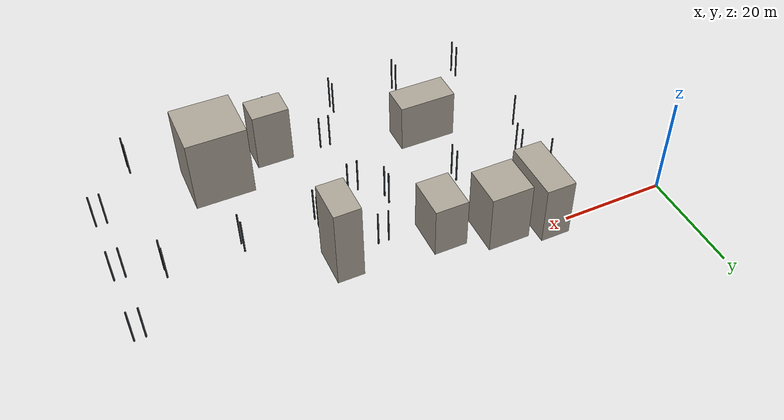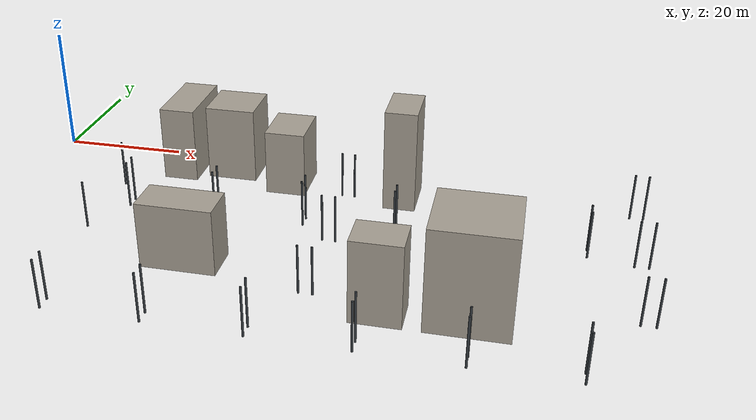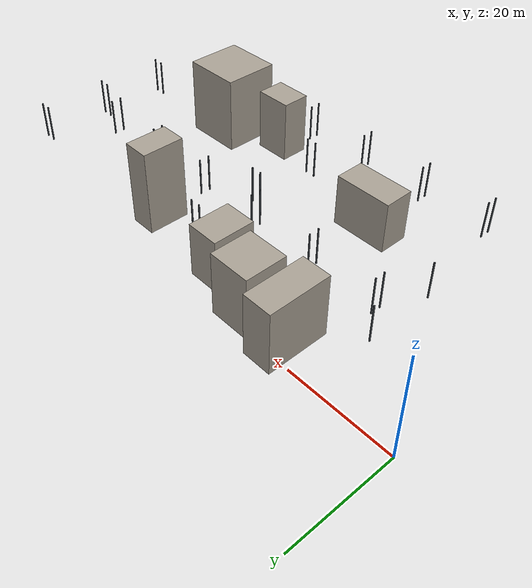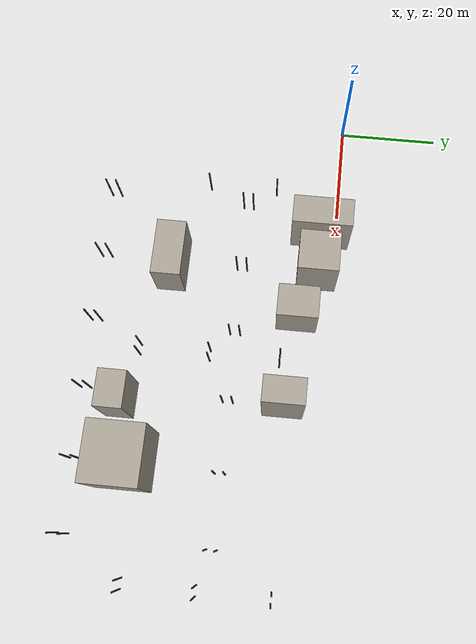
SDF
<sdf version="1.5">
 <world name="robocup_training_city_full_s7">
  <model name="building_0667">
   <static>true</static>
   <pose>33.540204 -32.883003 0 0 0 0</pose>
   <link name="link">
    <pose>0 0 5.029122 0 0 0</pose>
    <collision name="collision">
     <geometry><box><size>11.153431 5.819497 10.058244</size></box></geometry>
     <surface><friction><ode><mu>1</mu><mu2>1</mu2></ode></friction></surface>
    </collision>
    <visual name="visual">
     <geometry><box><size>11.153431 5.819497 10.058244</size></box></geometry>
     <material>
      <ambient>0.297 0.2835 0.261 1</ambient>
      <diffuse>0.66 0.63 0.58 1</diffuse>
      <specular>0.04 0.04 0.04 1</specular>
      <emissive>0 0 0 1</emissive>
     </material>
    </visual>
    <inertial>
     <mass>1</mass>
     <inertia>
      <ixx>11.252901</ixx>
      <ixy>0</ixy>
      <ixz>0</ixz>
      <iyy>18.797275</iyy>
      <iyz>0</iyz>
      <izz>13.188797</izz>
     </inertia>
    </inertial>
   </link>
  </model>
  <model name="building_0788">
   <static>true</static>
   <pose>74.495542 -36.841006 0 0 0 0</pose>
   <link name="link">
    <pose>0 0 7.563883 0 0 0</pose>
    <collision name="collision">
     <geometry><box><size>11.390095 10.860317 15.127766</size></box></geometry>
     <surface><friction><ode><mu>1</mu><mu2>1</mu2></ode></friction></surface>
    </collision>
    <visual name="visual">
     <geometry><box><size>11.390095 10.860317 15.127766</size></box></geometry>
     <material>
      <ambient>0.297 0.2835 0.261 1</ambient>
      <diffuse>0.66 0.63 0.58 1</diffuse>
      <specular>0.04 0.04 0.04 1</specular>
      <emissive>0 0 0 1</emissive>
     </material>
    </visual>
    <inertial>
     <mass>1</mass>
     <inertia>
      <ixx>28.899649</ixx>
      <ixy>0</ixy>
      <ixz>0</ixz>
      <iyy>29.881964</iyy>
      <iyz>0</iyz>
      <izz>20.640062</izz>
     </inertia>
    </inertial>
   </link>
  </model>
  <model name="building_0804">
   <static>true</static>
   <pose>62.766601 -39.588882 0 0 0 0</pose>
   <link name="link">
    <pose>0 0 6.126754 0 0 0</pose>
    <collision name="collision">
     <geometry><box><size>7.127302 5.447589 12.253508</size></box></geometry>
     <surface><friction><ode><mu>1</mu><mu2>1</mu2></ode></friction></surface>
    </collision>
    <visual name="visual">
     <geometry><box><size>7.127302 5.447589 12.253508</size></box></geometry>
     <material>
      <ambient>0.297 0.2835 0.261 1</ambient>
      <diffuse>0.66 0.63 0.58 1</diffuse>
      <specular>0.04 0.04 0.04 1</specular>
      <emissive>0 0 0 1</emissive>
     </material>
    </visual>
    <inertial>
     <mass>1</mass>
     <inertia>
      <ixx>14.98539</ixx>
      <ixy>0</ixy>
      <ixz>0</ixz>
      <iyy>16.745574</iyy>
      <iyz>0</iyz>
      <izz>6.706222</izz>
     </inertia>
    </inertial>
   </link>
  </model>
  <model name="building_1310">
   <static>true</static>
   <pose>32.338999 -3.36674 0 0 0 0</pose>
   <link name="link">
    <pose>0 0 6.127701 0 0 0</pose>
    <collision name="collision">
     <geometry><box><size>7.981018 7.94929 12.255402</size></box></geometry>
     <surface><friction><ode><mu>1</mu><mu2>1</mu2></ode></friction></surface>
    </collision>
    <visual name="visual">
     <geometry><box><size>7.981018 7.94929 12.255402</size></box></geometry>
     <material>
      <ambient>0.297 0.2835 0.261 1</ambient>
      <diffuse>0.66 0.63 0.58 1</diffuse>
      <specular>0.04 0.04 0.04 1</specular>
      <emissive>0 0 0 1</emissive>
     </material>
    </visual>
    <inertial>
     <mass>1</mass>
     <inertia>
      <ixx>17.782174</ixx>
      <ixy>0</ixy>
      <ixz>0</ixz>
      <iyy>17.824294</iyy>
      <iyz>0</iyz>
      <izz>10.573988</izz>
     </inertia>
    </inertial>
   </link>
  </model>
  <model name="building_1344">
   <static>true</static>
   <pose>24.014528 -3.276209 0 0 0 0</pose>
   <link name="link">
    <pose>0 0 6.074657 0 0 0</pose>
    <collision name="collision">
     <geometry><box><size>5.6072 11.893481 12.149315</size></box></geometry>
     <surface><friction><ode><mu>1</mu><mu2>1</mu2></ode></friction></surface>
    </collision>
    <visual name="visual">
     <geometry><box><size>5.6072 11.893481 12.149315</size></box></geometry>
     <material>
      <ambient>0.297 0.2835 0.261 1</ambient>
      <diffuse>0.66 0.63 0.58 1</diffuse>
      <specular>0.04 0.04 0.04 1</specular>
      <emissive>0 0 0 1</emissive>
     </material>
    </visual>
    <inertial>
     <mass>1</mass>
     <inertia>
      <ixx>24.088395</ixx>
      <ixy>0</ixy>
      <ixz>0</ixz>
      <iyy>14.920546</iyy>
      <iyz>0</iyz>
      <izz>14.407965</izz>
     </inertia>
    </inertial>
   </link>
  </model>
  <model name="building_1345">
   <static>true</static>
   <pose>42.341442 -6.593479 0 0 0 0</pose>
   <link name="link">
    <pose>0 0 5.240731 0 0 0</pose>
    <collision name="collision">
     <geometry><box><size>6.306943 8.052039 10.481462</size></box></geometry>
     <surface><friction><ode><mu>1</mu><mu2>1</mu2></ode></friction></surface>
    </collision>
    <visual name="visual">
     <geometry><box><size>6.306943 8.052039 10.481462</size></box></geometry>
     <material>
      <ambient>0.297 0.2835 0.261 1</ambient>
      <diffuse>0.66 0.63 0.58 1</diffuse>
      <specular>0.04 0.04 0.04 1</specular>
      <emissive>0 0 0 1</emissive>
     </material>
    </visual>
    <inertial>
     <mass>1</mass>
     <inertia>
      <ixx>14.558031</ixx>
      <ixy>0</ixy>
      <ixz>0</ixz>
      <iyy>12.469881</iyy>
      <iyz>0</iyz>
      <izz>8.717739</izz>
     </inertia>
    </inertial>
   </link>
  </model>
  <model name="building_1717">
   <static>true</static>
   <pose>60.892966 -7.826447 0 0 0 0</pose>
   <link name="link">
    <pose>0 0 8.139301 0 0 0</pose>
    <collision name="collision">
     <geometry><box><size>5.001045 7.930526 16.278602</size></box></geometry>
     <surface><friction><ode><mu>1</mu><mu2>1</mu2></ode></friction></surface>
    </collision>
    <visual name="visual">
     <geometry><box><size>5.001045 7.930526 16.278602</size></box></geometry>
     <material>
      <ambient>0.297 0.2835 0.261 1</ambient>
      <diffuse>0.66 0.63 0.58 1</diffuse>
      <specular>0.04 0.04 0.04 1</specular>
      <emissive>0 0 0 1</emissive>
     </material>
    </visual>
    <inertial>
     <mass>1</mass>
     <inertia>
      <ixx>27.323844</ixx>
      <ixy>0</ixy>
      <ixz>0</ixz>
      <iyy>24.166945</iyy>
      <iyz>0</iyz>
      <izz>7.325308</izz>
     </inertia>
    </inertial>
   </link>
  </model>
  <model name="lamp_post_2544">
   <static>true</static>
   <pose>15.8 -27.062914 0 0 0 0</pose>
   <link name="link">
    <pose>0 0 3.75 0 0 0</pose>
    <collision name="collision">
     <geometry><cylinder><radius>0.15</radius><length>7.5</length></cylinder></geometry>
     <surface><friction><ode><mu>1</mu><mu2>1</mu2></ode></friction></surface>
    </collision>
    <visual name="visual">
     <geometry><cylinder><radius>0.15</radius><length>7.5</length></cylinder></geometry>
     <material>
      <ambient>0.09 0.099 0.108 1</ambient>
      <diffuse>0.2 0.22 0.24 1</diffuse>
      <specular>0.04 0.04 0.04 1</specular>
      <emissive>0 0 0 1</emissive>
     </material>
    </visual>
    <inertial>
     <mass>1</mass>
     <inertia>
      <ixx>4.693125</ixx>
      <ixy>0</ixy>
      <ixz>0</ixz>
      <iyy>4.693125</iyy>
      <iyz>0</iyz>
      <izz>0.01125</izz>
     </inertia>
    </inertial>
   </link>
  </model>
  <model name="lamp_post_2546">
   <static>true</static>
   <pose>15.8 -13.062914 0 0 0 0</pose>
   <link name="link">
    <pose>0 0 3.75 0 0 0</pose>
    <collision name="collision">
     <geometry><cylinder><radius>0.15</radius><length>7.5</length></cylinder></geometry>
     <surface><friction><ode><mu>1</mu><mu2>1</mu2></ode></friction></surface>
    </collision>
    <visual name="visual">
     <geometry><cylinder><radius>0.15</radius><length>7.5</length></cylinder></geometry>
     <material>
      <ambient>0.09 0.099 0.108 1</ambient>
      <diffuse>0.2 0.22 0.24 1</diffuse>
      <specular>0.04 0.04 0.04 1</specular>
      <emissive>0 0 0 1</emissive>
     </material>
    </visual>
    <inertial>
     <mass>1</mass>
     <inertia>
      <ixx>4.693125</ixx>
      <ixy>0</ixy>
      <ixz>0</ixz>
      <iyy>4.693125</iyy>
      <iyz>0</iyz>
      <izz>0.01125</izz>
     </inertia>
    </inertial>
   </link>
  </model>
  <model name="lamp_post_2555">
   <static>true</static>
   <pose>51.4 -37.222369 0 0 0 0</pose>
   <link name="link">
    <pose>0 0 3.75 0 0 0</pose>
    <collision name="collision">
     <geometry><cylinder><radius>0.15</radius><length>7.5</length></cylinder></geometry>
     <surface><friction><ode><mu>1</mu><mu2>1</mu2></ode></friction></surface>
    </collision>
    <visual name="visual">
     <geometry><cylinder><radius>0.15</radius><length>7.5</length></cylinder></geometry>
     <material>
      <ambient>0.09 0.099 0.108 1</ambient>
      <diffuse>0.2 0.22 0.24 1</diffuse>
      <specular>0.04 0.04 0.04 1</specular>
      <emissive>0 0 0 1</emissive>
     </material>
    </visual>
    <inertial>
     <mass>1</mass>
     <inertia>
      <ixx>4.693125</ixx>
      <ixy>0</ixy>
      <ixz>0</ixz>
      <iyy>4.693125</iyy>
      <iyz>0</iyz>
      <izz>0.01125</izz>
     </inertia>
    </inertial>
   </link>
  </model>
  <model name="lamp_post_2556">
   <static>true</static>
   <pose>53.4 -37.222369 0 0 0 0</pose>
   <link name="link">
    <pose>0 0 3.75 0 0 0</pose>
    <collision name="collision">
     <geometry><cylinder><radius>0.15</radius><length>7.5</length></cylinder></geometry>
     <surface><friction><ode><mu>1</mu><mu2>1</mu2></ode></friction></surface>
    </collision>
    <visual name="visual">
     <geometry><cylinder><radius>0.15</radius><length>7.5</length></cylinder></geometry>
     <material>
      <ambient>0.09 0.099 0.108 1</ambient>
      <diffuse>0.2 0.22 0.24 1</diffuse>
      <specular>0.04 0.04 0.04 1</specular>
      <emissive>0 0 0 1</emissive>
     </material>
    </visual>
    <inertial>
     <mass>1</mass>
     <inertia>
      <ixx>4.693125</ixx>
      <ixy>0</ixy>
      <ixz>0</ixz>
      <iyy>4.693125</iyy>
      <iyz>0</iyz>
      <izz>0.01125</izz>
     </inertia>
    </inertial>
   </link>
  </model>
  <model name="lamp_post_2557">
   <static>true</static>
   <pose>51.4 -23.222369 0 0 0 0</pose>
   <link name="link">
    <pose>0 0 3.75 0 0 0</pose>
    <collision name="collision">
     <geometry><cylinder><radius>0.15</radius><length>7.5</length></cylinder></geometry>
     <surface><friction><ode><mu>1</mu><mu2>1</mu2></ode></friction></surface>
    </collision>
    <visual name="visual">
     <geometry><cylinder><radius>0.15</radius><length>7.5</length></cylinder></geometry>
     <material>
      <ambient>0.09 0.099 0.108 1</ambient>
      <diffuse>0.2 0.22 0.24 1</diffuse>
      <specular>0.04 0.04 0.04 1</specular>
      <emissive>0 0 0 1</emissive>
     </material>
    </visual>
    <inertial>
     <mass>1</mass>
     <inertia>
      <ixx>4.693125</ixx>
      <ixy>0</ixy>
      <ixz>0</ixz>
      <iyy>4.693125</iyy>
      <iyz>0</iyz>
      <izz>0.01125</izz>
     </inertia>
    </inertial>
   </link>
  </model>
  <model name="lamp_post_2558">
   <static>true</static>
   <pose>53.4 -23.222369 0 0 0 0</pose>
   <link name="link">
    <pose>0 0 3.75 0 0 0</pose>
    <collision name="collision">
     <geometry><cylinder><radius>0.15</radius><length>7.5</length></cylinder></geometry>
     <surface><friction><ode><mu>1</mu><mu2>1</mu2></ode></friction></surface>
    </collision>
    <visual name="visual">
     <geometry><cylinder><radius>0.15</radius><length>7.5</length></cylinder></geometry>
     <material>
      <ambient>0.09 0.099 0.108 1</ambient>
      <diffuse>0.2 0.22 0.24 1</diffuse>
      <specular>0.04 0.04 0.04 1</specular>
      <emissive>0 0 0 1</emissive>
     </material>
    </visual>
    <inertial>
     <mass>1</mass>
     <inertia>
      <ixx>4.693125</ixx>
      <ixy>0</ixy>
      <ixz>0</ixz>
      <iyy>4.693125</iyy>
      <iyz>0</iyz>
      <izz>0.01125</izz>
     </inertia>
    </inertial>
   </link>
  </model>
  <model name="lamp_post_2559">
   <static>true</static>
   <pose>51.4 -9.222369 0 0 0 0</pose>
   <link name="link">
    <pose>0 0 3.75 0 0 0</pose>
    <collision name="collision">
     <geometry><cylinder><radius>0.15</radius><length>7.5</length></cylinder></geometry>
     <surface><friction><ode><mu>1</mu><mu2>1</mu2></ode></friction></surface>
    </collision>
    <visual name="visual">
     <geometry><cylinder><radius>0.15</radius><length>7.5</length></cylinder></geometry>
     <material>
      <ambient>0.09 0.099 0.108 1</ambient>
      <diffuse>0.2 0.22 0.24 1</diffuse>
      <specular>0.04 0.04 0.04 1</specular>
      <emissive>0 0 0 1</emissive>
     </material>
    </visual>
    <inertial>
     <mass>1</mass>
     <inertia>
      <ixx>4.693125</ixx>
      <ixy>0</ixy>
      <ixz>0</ixz>
      <iyy>4.693125</iyy>
      <iyz>0</iyz>
      <izz>0.01125</izz>
     </inertia>
    </inertial>
   </link>
  </model>
  <model name="lamp_post_2560">
   <static>true</static>
   <pose>53.4 -9.222369 0 0 0 0</pose>
   <link name="link">
    <pose>0 0 3.75 0 0 0</pose>
    <collision name="collision">
     <geometry><cylinder><radius>0.15</radius><length>7.5</length></cylinder></geometry>
     <surface><friction><ode><mu>1</mu><mu2>1</mu2></ode></friction></surface>
    </collision>
    <visual name="visual">
     <geometry><cylinder><radius>0.15</radius><length>7.5</length></cylinder></geometry>
     <material>
      <ambient>0.09 0.099 0.108 1</ambient>
      <diffuse>0.2 0.22 0.24 1</diffuse>
      <specular>0.04 0.04 0.04 1</specular>
      <emissive>0 0 0 1</emissive>
     </material>
    </visual>
    <inertial>
     <mass>1</mass>
     <inertia>
      <ixx>4.693125</ixx>
      <ixy>0</ixy>
      <ixz>0</ixz>
      <iyy>4.693125</iyy>
      <iyz>0</iyz>
      <izz>0.01125</izz>
     </inertia>
    </inertial>
   </link>
  </model>
  <model name="lamp_post_2567">
   <static>true</static>
   <pose>96 -34.838925 0 0 0 0</pose>
   <link name="link">
    <pose>0 0 3.75 0 0 0</pose>
    <collision name="collision">
     <geometry><cylinder><radius>0.15</radius><length>7.5</length></cylinder></geometry>
     <surface><friction><ode><mu>1</mu><mu2>1</mu2></ode></friction></surface>
    </collision>
    <visual name="visual">
     <geometry><cylinder><radius>0.15</radius><length>7.5</length></cylinder></geometry>
     <material>
      <ambient>0.09 0.099 0.108 1</ambient>
      <diffuse>0.2 0.22 0.24 1</diffuse>
      <specular>0.04 0.04 0.04 1</specular>
      <emissive>0 0 0 1</emissive>
     </material>
    </visual>
    <inertial>
     <mass>1</mass>
     <inertia>
      <ixx>4.693125</ixx>
      <ixy>0</ixy>
      <ixz>0</ixz>
      <iyy>4.693125</iyy>
      <iyz>0</iyz>
      <izz>0.01125</izz>
     </inertia>
    </inertial>
   </link>
  </model>
  <model name="lamp_post_2568">
   <static>true</static>
   <pose>98 -34.838925 0 0 0 0</pose>
   <link name="link">
    <pose>0 0 3.75 0 0 0</pose>
    <collision name="collision">
     <geometry><cylinder><radius>0.15</radius><length>7.5</length></cylinder></geometry>
     <surface><friction><ode><mu>1</mu><mu2>1</mu2></ode></friction></surface>
    </collision>
    <visual name="visual">
     <geometry><cylinder><radius>0.15</radius><length>7.5</length></cylinder></geometry>
     <material>
      <ambient>0.09 0.099 0.108 1</ambient>
      <diffuse>0.2 0.22 0.24 1</diffuse>
      <specular>0.04 0.04 0.04 1</specular>
      <emissive>0 0 0 1</emissive>
     </material>
    </visual>
    <inertial>
     <mass>1</mass>
     <inertia>
      <ixx>4.693125</ixx>
      <ixy>0</ixy>
      <ixz>0</ixz>
      <iyy>4.693125</iyy>
      <iyz>0</iyz>
      <izz>0.01125</izz>
     </inertia>
    </inertial>
   </link>
  </model>
  <model name="lamp_post_2569">
   <static>true</static>
   <pose>96 -20.838925 0 0 0 0</pose>
   <link name="link">
    <pose>0 0 3.75 0 0 0</pose>
    <collision name="collision">
     <geometry><cylinder><radius>0.15</radius><length>7.5</length></cylinder></geometry>
     <surface><friction><ode><mu>1</mu><mu2>1</mu2></ode></friction></surface>
    </collision>
    <visual name="visual">
     <geometry><cylinder><radius>0.15</radius><length>7.5</length></cylinder></geometry>
     <material>
      <ambient>0.09 0.099 0.108 1</ambient>
      <diffuse>0.2 0.22 0.24 1</diffuse>
      <specular>0.04 0.04 0.04 1</specular>
      <emissive>0 0 0 1</emissive>
     </material>
    </visual>
    <inertial>
     <mass>1</mass>
     <inertia>
      <ixx>4.693125</ixx>
      <ixy>0</ixy>
      <ixz>0</ixz>
      <iyy>4.693125</iyy>
      <iyz>0</iyz>
      <izz>0.01125</izz>
     </inertia>
    </inertial>
   </link>
  </model>
  <model name="lamp_post_2570">
   <static>true</static>
   <pose>98 -20.838925 0 0 0 0</pose>
   <link name="link">
    <pose>0 0 3.75 0 0 0</pose>
    <collision name="collision">
     <geometry><cylinder><radius>0.15</radius><length>7.5</length></cylinder></geometry>
     <surface><friction><ode><mu>1</mu><mu2>1</mu2></ode></friction></surface>
    </collision>
    <visual name="visual">
     <geometry><cylinder><radius>0.15</radius><length>7.5</length></cylinder></geometry>
     <material>
      <ambient>0.09 0.099 0.108 1</ambient>
      <diffuse>0.2 0.22 0.24 1</diffuse>
      <specular>0.04 0.04 0.04 1</specular>
      <emissive>0 0 0 1</emissive>
     </material>
    </visual>
    <inertial>
     <mass>1</mass>
     <inertia>
      <ixx>4.693125</ixx>
      <ixy>0</ixy>
      <ixz>0</ixz>
      <iyy>4.693125</iyy>
      <iyz>0</iyz>
      <izz>0.01125</izz>
     </inertia>
    </inertial>
   </link>
  </model>
  <model name="lamp_post_2571">
   <static>true</static>
   <pose>96 -6.838925 0 0 0 0</pose>
   <link name="link">
    <pose>0 0 3.75 0 0 0</pose>
    <collision name="collision">
     <geometry><cylinder><radius>0.15</radius><length>7.5</length></cylinder></geometry>
     <surface><friction><ode><mu>1</mu><mu2>1</mu2></ode></friction></surface>
    </collision>
    <visual name="visual">
     <geometry><cylinder><radius>0.15</radius><length>7.5</length></cylinder></geometry>
     <material>
      <ambient>0.09 0.099 0.108 1</ambient>
      <diffuse>0.2 0.22 0.24 1</diffuse>
      <specular>0.04 0.04 0.04 1</specular>
      <emissive>0 0 0 1</emissive>
     </material>
    </visual>
    <inertial>
     <mass>1</mass>
     <inertia>
      <ixx>4.693125</ixx>
      <ixy>0</ixy>
      <ixz>0</ixz>
      <iyy>4.693125</iyy>
      <iyz>0</iyz>
      <izz>0.01125</izz>
     </inertia>
    </inertial>
   </link>
  </model>
  <model name="lamp_post_2572">
   <static>true</static>
   <pose>98 -6.838925 0 0 0 0</pose>
   <link name="link">
    <pose>0 0 3.75 0 0 0</pose>
    <collision name="collision">
     <geometry><cylinder><radius>0.15</radius><length>7.5</length></cylinder></geometry>
     <surface><friction><ode><mu>1</mu><mu2>1</mu2></ode></friction></surface>
    </collision>
    <visual name="visual">
     <geometry><cylinder><radius>0.15</radius><length>7.5</length></cylinder></geometry>
     <material>
      <ambient>0.09 0.099 0.108 1</ambient>
      <diffuse>0.2 0.22 0.24 1</diffuse>
      <specular>0.04 0.04 0.04 1</specular>
      <emissive>0 0 0 1</emissive>
     </material>
    </visual>
    <inertial>
     <mass>1</mass>
     <inertia>
      <ixx>4.693125</ixx>
      <ixy>0</ixy>
      <ixz>0</ixz>
      <iyy>4.693125</iyy>
      <iyz>0</iyz>
      <izz>0.01125</izz>
     </inertia>
    </inertial>
   </link>
  </model>
  <model name="lamp_post_2595">
   <static>true</static>
   <pose>19.07256 -48 0 0 0 0</pose>
   <link name="link">
    <pose>0 0 3.75 0 0 0</pose>
    <collision name="collision">
     <geometry><cylinder><radius>0.15</radius><length>7.5</length></cylinder></geometry>
     <surface><friction><ode><mu>1</mu><mu2>1</mu2></ode></friction></surface>
    </collision>
    <visual name="visual">
     <geometry><cylinder><radius>0.15</radius><length>7.5</length></cylinder></geometry>
     <material>
      <ambient>0.09 0.099 0.108 1</ambient>
      <diffuse>0.2 0.22 0.24 1</diffuse>
      <specular>0.04 0.04 0.04 1</specular>
      <emissive>0 0 0 1</emissive>
     </material>
    </visual>
    <inertial>
     <mass>1</mass>
     <inertia>
      <ixx>4.693125</ixx>
      <ixy>0</ixy>
      <ixz>0</ixz>
      <iyy>4.693125</iyy>
      <iyz>0</iyz>
      <izz>0.01125</izz>
     </inertia>
    </inertial>
   </link>
  </model>
  <model name="lamp_post_2596">
   <static>true</static>
   <pose>19.07256 -46 0 0 0 0</pose>
   <link name="link">
    <pose>0 0 3.75 0 0 0</pose>
    <collision name="collision">
     <geometry><cylinder><radius>0.15</radius><length>7.5</length></cylinder></geometry>
     <surface><friction><ode><mu>1</mu><mu2>1</mu2></ode></friction></surface>
    </collision>
    <visual name="visual">
     <geometry><cylinder><radius>0.15</radius><length>7.5</length></cylinder></geometry>
     <material>
      <ambient>0.09 0.099 0.108 1</ambient>
      <diffuse>0.2 0.22 0.24 1</diffuse>
      <specular>0.04 0.04 0.04 1</specular>
      <emissive>0 0 0 1</emissive>
     </material>
    </visual>
    <inertial>
     <mass>1</mass>
     <inertia>
      <ixx>4.693125</ixx>
      <ixy>0</ixy>
      <ixz>0</ixz>
      <iyy>4.693125</iyy>
      <iyz>0</iyz>
      <izz>0.01125</izz>
     </inertia>
    </inertial>
   </link>
  </model>
  <model name="lamp_post_2597">
   <static>true</static>
   <pose>33.07256 -48 0 0 0 0</pose>
   <link name="link">
    <pose>0 0 3.75 0 0 0</pose>
    <collision name="collision">
     <geometry><cylinder><radius>0.15</radius><length>7.5</length></cylinder></geometry>
     <surface><friction><ode><mu>1</mu><mu2>1</mu2></ode></friction></surface>
    </collision>
    <visual name="visual">
     <geometry><cylinder><radius>0.15</radius><length>7.5</length></cylinder></geometry>
     <material>
      <ambient>0.09 0.099 0.108 1</ambient>
      <diffuse>0.2 0.22 0.24 1</diffuse>
      <specular>0.04 0.04 0.04 1</specular>
      <emissive>0 0 0 1</emissive>
     </material>
    </visual>
    <inertial>
     <mass>1</mass>
     <inertia>
      <ixx>4.693125</ixx>
      <ixy>0</ixy>
      <ixz>0</ixz>
      <iyy>4.693125</iyy>
      <iyz>0</iyz>
      <izz>0.01125</izz>
     </inertia>
    </inertial>
   </link>
  </model>
  <model name="lamp_post_2598">
   <static>true</static>
   <pose>33.07256 -46 0 0 0 0</pose>
   <link name="link">
    <pose>0 0 3.75 0 0 0</pose>
    <collision name="collision">
     <geometry><cylinder><radius>0.15</radius><length>7.5</length></cylinder></geometry>
     <surface><friction><ode><mu>1</mu><mu2>1</mu2></ode></friction></surface>
    </collision>
    <visual name="visual">
     <geometry><cylinder><radius>0.15</radius><length>7.5</length></cylinder></geometry>
     <material>
      <ambient>0.09 0.099 0.108 1</ambient>
      <diffuse>0.2 0.22 0.24 1</diffuse>
      <specular>0.04 0.04 0.04 1</specular>
      <emissive>0 0 0 1</emissive>
     </material>
    </visual>
    <inertial>
     <mass>1</mass>
     <inertia>
      <ixx>4.693125</ixx>
      <ixy>0</ixy>
      <ixz>0</ixz>
      <iyy>4.693125</iyy>
      <iyz>0</iyz>
      <izz>0.01125</izz>
     </inertia>
    </inertial>
   </link>
  </model>
  <model name="lamp_post_2599">
   <static>true</static>
   <pose>47.07256 -48 0 0 0 0</pose>
   <link name="link">
    <pose>0 0 3.75 0 0 0</pose>
    <collision name="collision">
     <geometry><cylinder><radius>0.15</radius><length>7.5</length></cylinder></geometry>
     <surface><friction><ode><mu>1</mu><mu2>1</mu2></ode></friction></surface>
    </collision>
    <visual name="visual">
     <geometry><cylinder><radius>0.15</radius><length>7.5</length></cylinder></geometry>
     <material>
      <ambient>0.09 0.099 0.108 1</ambient>
      <diffuse>0.2 0.22 0.24 1</diffuse>
      <specular>0.04 0.04 0.04 1</specular>
      <emissive>0 0 0 1</emissive>
     </material>
    </visual>
    <inertial>
     <mass>1</mass>
     <inertia>
      <ixx>4.693125</ixx>
      <ixy>0</ixy>
      <ixz>0</ixz>
      <iyy>4.693125</iyy>
      <iyz>0</iyz>
      <izz>0.01125</izz>
     </inertia>
    </inertial>
   </link>
  </model>
  <model name="lamp_post_2600">
   <static>true</static>
   <pose>47.07256 -46 0 0 0 0</pose>
   <link name="link">
    <pose>0 0 3.75 0 0 0</pose>
    <collision name="collision">
     <geometry><cylinder><radius>0.15</radius><length>7.5</length></cylinder></geometry>
     <surface><friction><ode><mu>1</mu><mu2>1</mu2></ode></friction></surface>
    </collision>
    <visual name="visual">
     <geometry><cylinder><radius>0.15</radius><length>7.5</length></cylinder></geometry>
     <material>
      <ambient>0.09 0.099 0.108 1</ambient>
      <diffuse>0.2 0.22 0.24 1</diffuse>
      <specular>0.04 0.04 0.04 1</specular>
      <emissive>0 0 0 1</emissive>
     </material>
    </visual>
    <inertial>
     <mass>1</mass>
     <inertia>
      <ixx>4.693125</ixx>
      <ixy>0</ixy>
      <ixz>0</ixz>
      <iyy>4.693125</iyy>
      <iyz>0</iyz>
      <izz>0.01125</izz>
     </inertia>
    </inertial>
   </link>
  </model>
  <model name="lamp_post_2601">
   <static>true</static>
   <pose>61.07256 -48 0 0 0 0</pose>
   <link name="link">
    <pose>0 0 3.75 0 0 0</pose>
    <collision name="collision">
     <geometry><cylinder><radius>0.15</radius><length>7.5</length></cylinder></geometry>
     <surface><friction><ode><mu>1</mu><mu2>1</mu2></ode></friction></surface>
    </collision>
    <visual name="visual">
     <geometry><cylinder><radius>0.15</radius><length>7.5</length></cylinder></geometry>
     <material>
      <ambient>0.09 0.099 0.108 1</ambient>
      <diffuse>0.2 0.22 0.24 1</diffuse>
      <specular>0.04 0.04 0.04 1</specular>
      <emissive>0 0 0 1</emissive>
     </material>
    </visual>
    <inertial>
     <mass>1</mass>
     <inertia>
      <ixx>4.693125</ixx>
      <ixy>0</ixy>
      <ixz>0</ixz>
      <iyy>4.693125</iyy>
      <iyz>0</iyz>
      <izz>0.01125</izz>
     </inertia>
    </inertial>
   </link>
  </model>
  <model name="lamp_post_2602">
   <static>true</static>
   <pose>61.07256 -46 0 0 0 0</pose>
   <link name="link">
    <pose>0 0 3.75 0 0 0</pose>
    <collision name="collision">
     <geometry><cylinder><radius>0.15</radius><length>7.5</length></cylinder></geometry>
     <surface><friction><ode><mu>1</mu><mu2>1</mu2></ode></friction></surface>
    </collision>
    <visual name="visual">
     <geometry><cylinder><radius>0.15</radius><length>7.5</length></cylinder></geometry>
     <material>
      <ambient>0.09 0.099 0.108 1</ambient>
      <diffuse>0.2 0.22 0.24 1</diffuse>
      <specular>0.04 0.04 0.04 1</specular>
      <emissive>0 0 0 1</emissive>
     </material>
    </visual>
    <inertial>
     <mass>1</mass>
     <inertia>
      <ixx>4.693125</ixx>
      <ixy>0</ixy>
      <ixz>0</ixz>
      <iyy>4.693125</iyy>
      <iyz>0</iyz>
      <izz>0.01125</izz>
     </inertia>
    </inertial>
   </link>
  </model>
  <model name="lamp_post_2603">
   <static>true</static>
   <pose>75.07256 -48 0 0 0 0</pose>
   <link name="link">
    <pose>0 0 3.75 0 0 0</pose>
    <collision name="collision">
     <geometry><cylinder><radius>0.15</radius><length>7.5</length></cylinder></geometry>
     <surface><friction><ode><mu>1</mu><mu2>1</mu2></ode></friction></surface>
    </collision>
    <visual name="visual">
     <geometry><cylinder><radius>0.15</radius><length>7.5</length></cylinder></geometry>
     <material>
      <ambient>0.09 0.099 0.108 1</ambient>
      <diffuse>0.2 0.22 0.24 1</diffuse>
      <specular>0.04 0.04 0.04 1</specular>
      <emissive>0 0 0 1</emissive>
     </material>
    </visual>
    <inertial>
     <mass>1</mass>
     <inertia>
      <ixx>4.693125</ixx>
      <ixy>0</ixy>
      <ixz>0</ixz>
      <iyy>4.693125</iyy>
      <iyz>0</iyz>
      <izz>0.01125</izz>
     </inertia>
    </inertial>
   </link>
  </model>
  <model name="lamp_post_2604">
   <static>true</static>
   <pose>75.07256 -46 0 0 0 0</pose>
   <link name="link">
    <pose>0 0 3.75 0 0 0</pose>
    <collision name="collision">
     <geometry><cylinder><radius>0.15</radius><length>7.5</length></cylinder></geometry>
     <surface><friction><ode><mu>1</mu><mu2>1</mu2></ode></friction></surface>
    </collision>
    <visual name="visual">
     <geometry><cylinder><radius>0.15</radius><length>7.5</length></cylinder></geometry>
     <material>
      <ambient>0.09 0.099 0.108 1</ambient>
      <diffuse>0.2 0.22 0.24 1</diffuse>
      <specular>0.04 0.04 0.04 1</specular>
      <emissive>0 0 0 1</emissive>
     </material>
    </visual>
    <inertial>
     <mass>1</mass>
     <inertia>
      <ixx>4.693125</ixx>
      <ixy>0</ixy>
      <ixz>0</ixz>
      <iyy>4.693125</iyy>
      <iyz>0</iyz>
      <izz>0.01125</izz>
     </inertia>
    </inertial>
   </link>
  </model>
  <model name="lamp_post_2605">
   <static>true</static>
   <pose>89.07256 -48 0 0 0 0</pose>
   <link name="link">
    <pose>0 0 3.75 0 0 0</pose>
    <collision name="collision">
     <geometry><cylinder><radius>0.15</radius><length>7.5</length></cylinder></geometry>
     <surface><friction><ode><mu>1</mu><mu2>1</mu2></ode></friction></surface>
    </collision>
    <visual name="visual">
     <geometry><cylinder><radius>0.15</radius><length>7.5</length></cylinder></geometry>
     <material>
      <ambient>0.09 0.099 0.108 1</ambient>
      <diffuse>0.2 0.22 0.24 1</diffuse>
      <specular>0.04 0.04 0.04 1</specular>
      <emissive>0 0 0 1</emissive>
     </material>
    </visual>
    <inertial>
     <mass>1</mass>
     <inertia>
      <ixx>4.693125</ixx>
      <ixy>0</ixy>
      <ixz>0</ixz>
      <iyy>4.693125</iyy>
      <iyz>0</iyz>
      <izz>0.01125</izz>
     </inertia>
    </inertial>
   </link>
  </model>
  <model name="lamp_post_2606">
   <static>true</static>
   <pose>89.07256 -46 0 0 0 0</pose>
   <link name="link">
    <pose>0 0 3.75 0 0 0</pose>
    <collision name="collision">
     <geometry><cylinder><radius>0.15</radius><length>7.5</length></cylinder></geometry>
     <surface><friction><ode><mu>1</mu><mu2>1</mu2></ode></friction></surface>
    </collision>
    <visual name="visual">
     <geometry><cylinder><radius>0.15</radius><length>7.5</length></cylinder></geometry>
     <material>
      <ambient>0.09 0.099 0.108 1</ambient>
      <diffuse>0.2 0.22 0.24 1</diffuse>
      <specular>0.04 0.04 0.04 1</specular>
      <emissive>0 0 0 1</emissive>
     </material>
    </visual>
    <inertial>
     <mass>1</mass>
     <inertia>
      <ixx>4.693125</ixx>
      <ixy>0</ixy>
      <ixz>0</ixz>
      <iyy>4.693125</iyy>
      <iyz>0</iyz>
      <izz>0.01125</izz>
     </inertia>
    </inertial>
   </link>
  </model>
  <model name="lamp_post_2623">
   <static>true</static>
   <pose>19.508768 -19.666667 0 0 0 0</pose>
   <link name="link">
    <pose>0 0 3.75 0 0 0</pose>
    <collision name="collision">
     <geometry><cylinder><radius>0.15</radius><length>7.5</length></cylinder></geometry>
     <surface><friction><ode><mu>1</mu><mu2>1</mu2></ode></friction></surface>
    </collision>
    <visual name="visual">
     <geometry><cylinder><radius>0.15</radius><length>7.5</length></cylinder></geometry>
     <material>
      <ambient>0.09 0.099 0.108 1</ambient>
      <diffuse>0.2 0.22 0.24 1</diffuse>
      <specular>0.04 0.04 0.04 1</specular>
      <emissive>0 0 0 1</emissive>
     </material>
    </visual>
    <inertial>
     <mass>1</mass>
     <inertia>
      <ixx>4.693125</ixx>
      <ixy>0</ixy>
      <ixz>0</ixz>
      <iyy>4.693125</iyy>
      <iyz>0</iyz>
      <izz>0.01125</izz>
     </inertia>
    </inertial>
   </link>
  </model>
  <model name="lamp_post_2624">
   <static>true</static>
   <pose>19.508768 -17.666667 0 0 0 0</pose>
   <link name="link">
    <pose>0 0 3.75 0 0 0</pose>
    <collision name="collision">
     <geometry><cylinder><radius>0.15</radius><length>7.5</length></cylinder></geometry>
     <surface><friction><ode><mu>1</mu><mu2>1</mu2></ode></friction></surface>
    </collision>
    <visual name="visual">
     <geometry><cylinder><radius>0.15</radius><length>7.5</length></cylinder></geometry>
     <material>
      <ambient>0.09 0.099 0.108 1</ambient>
      <diffuse>0.2 0.22 0.24 1</diffuse>
      <specular>0.04 0.04 0.04 1</specular>
      <emissive>0 0 0 1</emissive>
     </material>
    </visual>
    <inertial>
     <mass>1</mass>
     <inertia>
      <ixx>4.693125</ixx>
      <ixy>0</ixy>
      <ixz>0</ixz>
      <iyy>4.693125</iyy>
      <iyz>0</iyz>
      <izz>0.01125</izz>
     </inertia>
    </inertial>
   </link>
  </model>
  <model name="lamp_post_2625">
   <static>true</static>
   <pose>33.508768 -19.666667 0 0 0 0</pose>
   <link name="link">
    <pose>0 0 3.75 0 0 0</pose>
    <collision name="collision">
     <geometry><cylinder><radius>0.15</radius><length>7.5</length></cylinder></geometry>
     <surface><friction><ode><mu>1</mu><mu2>1</mu2></ode></friction></surface>
    </collision>
    <visual name="visual">
     <geometry><cylinder><radius>0.15</radius><length>7.5</length></cylinder></geometry>
     <material>
      <ambient>0.09 0.099 0.108 1</ambient>
      <diffuse>0.2 0.22 0.24 1</diffuse>
      <specular>0.04 0.04 0.04 1</specular>
      <emissive>0 0 0 1</emissive>
     </material>
    </visual>
    <inertial>
     <mass>1</mass>
     <inertia>
      <ixx>4.693125</ixx>
      <ixy>0</ixy>
      <ixz>0</ixz>
      <iyy>4.693125</iyy>
      <iyz>0</iyz>
      <izz>0.01125</izz>
     </inertia>
    </inertial>
   </link>
  </model>
  <model name="lamp_post_2626">
   <static>true</static>
   <pose>33.508768 -17.666667 0 0 0 0</pose>
   <link name="link">
    <pose>0 0 3.75 0 0 0</pose>
    <collision name="collision">
     <geometry><cylinder><radius>0.15</radius><length>7.5</length></cylinder></geometry>
     <surface><friction><ode><mu>1</mu><mu2>1</mu2></ode></friction></surface>
    </collision>
    <visual name="visual">
     <geometry><cylinder><radius>0.15</radius><length>7.5</length></cylinder></geometry>
     <material>
      <ambient>0.09 0.099 0.108 1</ambient>
      <diffuse>0.2 0.22 0.24 1</diffuse>
      <specular>0.04 0.04 0.04 1</specular>
      <emissive>0 0 0 1</emissive>
     </material>
    </visual>
    <inertial>
     <mass>1</mass>
     <inertia>
      <ixx>4.693125</ixx>
      <ixy>0</ixy>
      <ixz>0</ixz>
      <iyy>4.693125</iyy>
      <iyz>0</iyz>
      <izz>0.01125</izz>
     </inertia>
    </inertial>
   </link>
  </model>
  <model name="lamp_post_2627">
   <static>true</static>
   <pose>47.508768 -19.666667 0 0 0 0</pose>
   <link name="link">
    <pose>0 0 3.75 0 0 0</pose>
    <collision name="collision">
     <geometry><cylinder><radius>0.15</radius><length>7.5</length></cylinder></geometry>
     <surface><friction><ode><mu>1</mu><mu2>1</mu2></ode></friction></surface>
    </collision>
    <visual name="visual">
     <geometry><cylinder><radius>0.15</radius><length>7.5</length></cylinder></geometry>
     <material>
      <ambient>0.09 0.099 0.108 1</ambient>
      <diffuse>0.2 0.22 0.24 1</diffuse>
      <specular>0.04 0.04 0.04 1</specular>
      <emissive>0 0 0 1</emissive>
     </material>
    </visual>
    <inertial>
     <mass>1</mass>
     <inertia>
      <ixx>4.693125</ixx>
      <ixy>0</ixy>
      <ixz>0</ixz>
      <iyy>4.693125</iyy>
      <iyz>0</iyz>
      <izz>0.01125</izz>
     </inertia>
    </inertial>
   </link>
  </model>
  <model name="lamp_post_2628">
   <static>true</static>
   <pose>47.508768 -17.666667 0 0 0 0</pose>
   <link name="link">
    <pose>0 0 3.75 0 0 0</pose>
    <collision name="collision">
     <geometry><cylinder><radius>0.15</radius><length>7.5</length></cylinder></geometry>
     <surface><friction><ode><mu>1</mu><mu2>1</mu2></ode></friction></surface>
    </collision>
    <visual name="visual">
     <geometry><cylinder><radius>0.15</radius><length>7.5</length></cylinder></geometry>
     <material>
      <ambient>0.09 0.099 0.108 1</ambient>
      <diffuse>0.2 0.22 0.24 1</diffuse>
      <specular>0.04 0.04 0.04 1</specular>
      <emissive>0 0 0 1</emissive>
     </material>
    </visual>
    <inertial>
     <mass>1</mass>
     <inertia>
      <ixx>4.693125</ixx>
      <ixy>0</ixy>
      <ixz>0</ixz>
      <iyy>4.693125</iyy>
      <iyz>0</iyz>
      <izz>0.01125</izz>
     </inertia>
    </inertial>
   </link>
  </model>
  <model name="lamp_post_2629">
   <static>true</static>
   <pose>61.508768 -19.666667 0 0 0 0</pose>
   <link name="link">
    <pose>0 0 3.75 0 0 0</pose>
    <collision name="collision">
     <geometry><cylinder><radius>0.15</radius><length>7.5</length></cylinder></geometry>
     <surface><friction><ode><mu>1</mu><mu2>1</mu2></ode></friction></surface>
    </collision>
    <visual name="visual">
     <geometry><cylinder><radius>0.15</radius><length>7.5</length></cylinder></geometry>
     <material>
      <ambient>0.09 0.099 0.108 1</ambient>
      <diffuse>0.2 0.22 0.24 1</diffuse>
      <specular>0.04 0.04 0.04 1</specular>
      <emissive>0 0 0 1</emissive>
     </material>
    </visual>
    <inertial>
     <mass>1</mass>
     <inertia>
      <ixx>4.693125</ixx>
      <ixy>0</ixy>
      <ixz>0</ixz>
      <iyy>4.693125</iyy>
      <iyz>0</iyz>
      <izz>0.01125</izz>
     </inertia>
    </inertial>
   </link>
  </model>
  <model name="lamp_post_2630">
   <static>true</static>
   <pose>61.508768 -17.666667 0 0 0 0</pose>
   <link name="link">
    <pose>0 0 3.75 0 0 0</pose>
    <collision name="collision">
     <geometry><cylinder><radius>0.15</radius><length>7.5</length></cylinder></geometry>
     <surface><friction><ode><mu>1</mu><mu2>1</mu2></ode></friction></surface>
    </collision>
    <visual name="visual">
     <geometry><cylinder><radius>0.15</radius><length>7.5</length></cylinder></geometry>
     <material>
      <ambient>0.09 0.099 0.108 1</ambient>
      <diffuse>0.2 0.22 0.24 1</diffuse>
      <specular>0.04 0.04 0.04 1</specular>
      <emissive>0 0 0 1</emissive>
     </material>
    </visual>
    <inertial>
     <mass>1</mass>
     <inertia>
      <ixx>4.693125</ixx>
      <ixy>0</ixy>
      <ixz>0</ixz>
      <iyy>4.693125</iyy>
      <iyz>0</iyz>
      <izz>0.01125</izz>
     </inertia>
    </inertial>
   </link>
  </model>
  <model name="lamp_post_2631">
   <static>true</static>
   <pose>75.508768 -19.666667 0 0 0 0</pose>
   <link name="link">
    <pose>0 0 3.75 0 0 0</pose>
    <collision name="collision">
     <geometry><cylinder><radius>0.15</radius><length>7.5</length></cylinder></geometry>
     <surface><friction><ode><mu>1</mu><mu2>1</mu2></ode></friction></surface>
    </collision>
    <visual name="visual">
     <geometry><cylinder><radius>0.15</radius><length>7.5</length></cylinder></geometry>
     <material>
      <ambient>0.09 0.099 0.108 1</ambient>
      <diffuse>0.2 0.22 0.24 1</diffuse>
      <specular>0.04 0.04 0.04 1</specular>
      <emissive>0 0 0 1</emissive>
     </material>
    </visual>
    <inertial>
     <mass>1</mass>
     <inertia>
      <ixx>4.693125</ixx>
      <ixy>0</ixy>
      <ixz>0</ixz>
      <iyy>4.693125</iyy>
      <iyz>0</iyz>
      <izz>0.01125</izz>
     </inertia>
    </inertial>
   </link>
  </model>
  <model name="lamp_post_2632">
   <static>true</static>
   <pose>75.508768 -17.666667 0 0 0 0</pose>
   <link name="link">
    <pose>0 0 3.75 0 0 0</pose>
    <collision name="collision">
     <geometry><cylinder><radius>0.15</radius><length>7.5</length></cylinder></geometry>
     <surface><friction><ode><mu>1</mu><mu2>1</mu2></ode></friction></surface>
    </collision>
    <visual name="visual">
     <geometry><cylinder><radius>0.15</radius><length>7.5</length></cylinder></geometry>
     <material>
      <ambient>0.09 0.099 0.108 1</ambient>
      <diffuse>0.2 0.22 0.24 1</diffuse>
      <specular>0.04 0.04 0.04 1</specular>
      <emissive>0 0 0 1</emissive>
     </material>
    </visual>
    <inertial>
     <mass>1</mass>
     <inertia>
      <ixx>4.693125</ixx>
      <ixy>0</ixy>
      <ixz>0</ixz>
      <iyy>4.693125</iyy>
      <iyz>0</iyz>
      <izz>0.01125</izz>
     </inertia>
    </inertial>
   </link>
  </model>
  <model name="lamp_post_2633">
   <static>true</static>
   <pose>89.508768 -19.666667 0 0 0 0</pose>
   <link name="link">
    <pose>0 0 3.75 0 0 0</pose>
    <collision name="collision">
     <geometry><cylinder><radius>0.15</radius><length>7.5</length></cylinder></geometry>
     <surface><friction><ode><mu>1</mu><mu2>1</mu2></ode></friction></surface>
    </collision>
    <visual name="visual">
     <geometry><cylinder><radius>0.15</radius><length>7.5</length></cylinder></geometry>
     <material>
      <ambient>0.09 0.099 0.108 1</ambient>
      <diffuse>0.2 0.22 0.24 1</diffuse>
      <specular>0.04 0.04 0.04 1</specular>
      <emissive>0 0 0 1</emissive>
     </material>
    </visual>
    <inertial>
     <mass>1</mass>
     <inertia>
      <ixx>4.693125</ixx>
      <ixy>0</ixy>
      <ixz>0</ixz>
      <iyy>4.693125</iyy>
      <iyz>0</iyz>
      <izz>0.01125</izz>
     </inertia>
    </inertial>
   </link>
  </model>
  <model name="lamp_post_2634">
   <static>true</static>
   <pose>89.508768 -17.666667 0 0 0 0</pose>
   <link name="link">
    <pose>0 0 3.75 0 0 0</pose>
    <collision name="collision">
     <geometry><cylinder><radius>0.15</radius><length>7.5</length></cylinder></geometry>
     <surface><friction><ode><mu>1</mu><mu2>1</mu2></ode></friction></surface>
    </collision>
    <visual name="visual">
     <geometry><cylinder><radius>0.15</radius><length>7.5</length></cylinder></geometry>
     <material>
      <ambient>0.09 0.099 0.108 1</ambient>
      <diffuse>0.2 0.22 0.24 1</diffuse>
      <specular>0.04 0.04 0.04 1</specular>
      <emissive>0 0 0 1</emissive>
     </material>
    </visual>
    <inertial>
     <mass>1</mass>
     <inertia>
      <ixx>4.693125</ixx>
      <ixy>0</ixy>
      <ixz>0</ixz>
      <iyy>4.693125</iyy>
      <iyz>0</iyz>
      <izz>0.01125</izz>
     </inertia>
    </inertial>
   </link>
  </model>
 </world>
</sdf>
